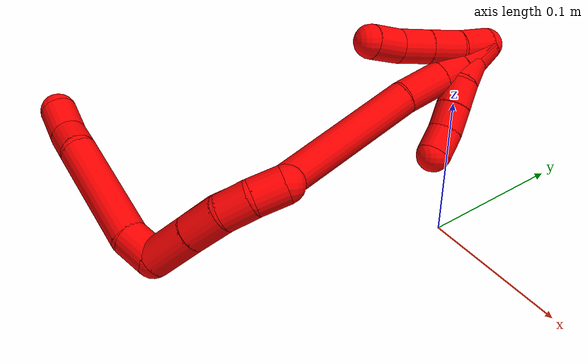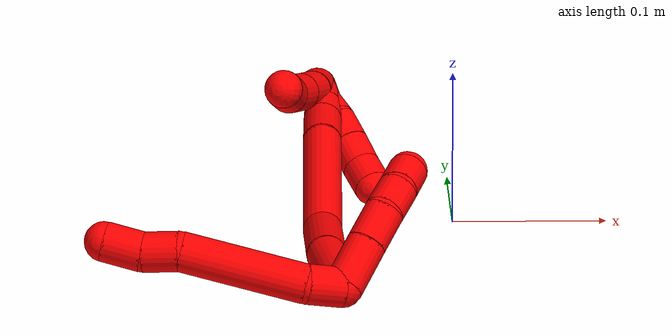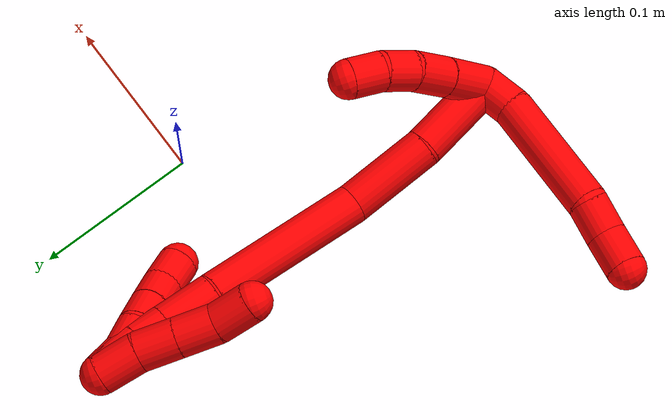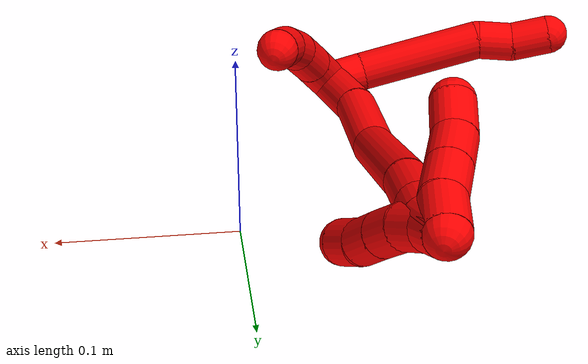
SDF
<sdf version="1.7">
 <world name="default">
  <model name="2">
   <static>0</static>
   <link name="2">
    <collision name="collision-cylinder-e_1_2_8">
     <pose>-0.008782 0.004555 0.00616 -0.636702 -0.853503 0.297485</pose>
     <geometry><cylinder><radius>0.0125</radius><length>0.023308</length></cylinder></geometry>
     <surface>
      <friction><ode><mu>1.16</mu><mu2>1.16</mu2><slip1>0</slip1><slip2>0</slip2></ode></friction>
      <contact><ode><kp>1e+06</kp><kd>1</kd><max_vel>0</max_vel><min_depth>0.001</min_depth></ode></contact>
     </surface>
    </collision>
    <visual name="visual-cylinder-e_1_2_8">
     <pose>-0.008782 0.004555 0.00616 -0.636702 -0.853503 0.297485</pose>
     <geometry><cylinder><radius>0.0125</radius><length>0.023308</length></cylinder></geometry>
     <material><ambient>1 0 0 1</ambient></material>
    </visual>
    <collision name="collision-cylinder-e_2_8_9">
     <pose>-0.048369 0.030845 0.024528 -1.05902 -0.890421 0.544649</pose>
     <geometry><cylinder><radius>0.0125</radius><length>0.079257</length></cylinder></geometry>
     <surface>
      <friction><ode><mu>1.16</mu><mu2>1.16</mu2><slip1>0</slip1><slip2>0</slip2></ode></friction>
      <contact><ode><kp>1e+06</kp><kd>1</kd><max_vel>0</max_vel><min_depth>0.001</min_depth></ode></contact>
     </surface>
    </collision>
    <visual name="visual-cylinder-e_2_8_9">
     <pose>-0.048369 0.030845 0.024528 -1.05902 -0.890421 0.544649</pose>
     <geometry><cylinder><radius>0.0125</radius><length>0.079257</length></cylinder></geometry>
     <material><ambient>1 0 0 1</ambient></material>
    </visual>
    <collision name="collision-cylinder-e_3_9_10">
     <pose>-0.089882 0.055957 0.038657 -1.05355 -1.22281 0.774261</pose>
     <geometry><cylinder><radius>0.0125</radius><length>0.022783</length></cylinder></geometry>
     <surface>
      <friction><ode><mu>1.16</mu><mu2>1.16</mu2><slip1>0</slip1><slip2>0</slip2></ode></friction>
      <contact><ode><kp>1e+06</kp><kd>1</kd><max_vel>0</max_vel><min_depth>0.001</min_depth></ode></contact>
     </surface>
    </collision>
    <visual name="visual-cylinder-e_3_9_10">
     <pose>-0.089882 0.055957 0.038657 -1.05355 -1.22281 0.774261</pose>
     <geometry><cylinder><radius>0.0125</radius><length>0.022783</length></cylinder></geometry>
     <material><ambient>1 0 0 1</ambient></material>
    </visual>
    <collision name="collision-cylinder-e_4_10_6">
     <pose>-0.11052 0.066214 0.043026 -1.22907 -0.936611 0.685726</pose>
     <geometry><cylinder><radius>0.0125</radius><length>0.024653</length></cylinder></geometry>
     <surface>
      <friction><ode><mu>1.16</mu><mu2>1.16</mu2><slip1>0</slip1><slip2>0</slip2></ode></friction>
      <contact><ode><kp>1e+06</kp><kd>1</kd><max_vel>0</max_vel><min_depth>0.001</min_depth></ode></contact>
     </surface>
    </collision>
    <visual name="visual-cylinder-e_4_10_6">
     <pose>-0.11052 0.066214 0.043026 -1.22907 -0.936611 0.685726</pose>
     <geometry><cylinder><radius>0.0125</radius><length>0.024653</length></cylinder></geometry>
     <material><ambient>1 0 0 1</ambient></material>
    </visual>
    <collision name="collision-cylinder-e_1_2_11">
     <pose>0.008349 0.010169 -0.00946 -2.3201 0.541243 -1.13437</pose>
     <geometry><cylinder><radius>0.0125</radius><length>0.03241</length></cylinder></geometry>
     <surface>
      <friction><ode><mu>1.16</mu><mu2>1.16</mu2><slip1>0</slip1><slip2>0</slip2></ode></friction>
      <contact><ode><kp>1e+06</kp><kd>1</kd><max_vel>0</max_vel><min_depth>0.001</min_depth></ode></contact>
     </surface>
    </collision>
    <visual name="visual-cylinder-e_1_2_11">
     <pose>0.008349 0.010169 -0.00946 -2.3201 0.541243 -1.13437</pose>
     <geometry><cylinder><radius>0.0125</radius><length>0.03241</length></cylinder></geometry>
     <material><ambient>1 0 0 1</ambient></material>
    </visual>
    <collision name="collision-cylinder-e_2_11_12">
     <pose>0.023035 0.02809 -0.02674 -2.3605 0.52224 -1.15145</pose>
     <geometry><cylinder><radius>0.0125</radius><length>0.025411</length></cylinder></geometry>
     <surface>
      <friction><ode><mu>1.16</mu><mu2>1.16</mu2><slip1>0</slip1><slip2>0</slip2></ode></friction>
      <contact><ode><kp>1e+06</kp><kd>1</kd><max_vel>0</max_vel><min_depth>0.001</min_depth></ode></contact>
     </surface>
    </collision>
    <visual name="visual-cylinder-e_2_11_12">
     <pose>0.023035 0.02809 -0.02674 -2.3605 0.52224 -1.15145</pose>
     <geometry><cylinder><radius>0.0125</radius><length>0.025411</length></cylinder></geometry>
     <material><ambient>1 0 0 1</ambient></material>
    </visual>
    <collision name="collision-cylinder-e_3_12_13">
     <pose>0.033273 0.041221 -0.042633 -2.55399 0.382257 -1.13793</pose>
     <geometry><cylinder><radius>0.0125</radius><length>0.020909</length></cylinder></geometry>
     <surface>
      <friction><ode><mu>1.16</mu><mu2>1.16</mu2><slip1>0</slip1><slip2>0</slip2></ode></friction>
      <contact><ode><kp>1e+06</kp><kd>1</kd><max_vel>0</max_vel><min_depth>0.001</min_depth></ode></contact>
     </surface>
    </collision>
    <visual name="visual-cylinder-e_3_12_13">
     <pose>0.033273 0.041221 -0.042633 -2.55399 0.382257 -1.13793</pose>
     <geometry><cylinder><radius>0.0125</radius><length>0.020909</length></cylinder></geometry>
     <material><ambient>1 0 0 1</ambient></material>
    </visual>
    <collision name="collision-cylinder-e_4_13_5">
     <pose>0.039003 0.050951 -0.060236 -2.71316 0.173012 -0.758643</pose>
     <geometry><cylinder><radius>0.0125</radius><length>0.02127</length></cylinder></geometry>
     <surface>
      <friction><ode><mu>1.16</mu><mu2>1.16</mu2><slip1>0</slip1><slip2>0</slip2></ode></friction>
      <contact><ode><kp>1e+06</kp><kd>1</kd><max_vel>0</max_vel><min_depth>0.001</min_depth></ode></contact>
     </surface>
    </collision>
    <visual name="visual-cylinder-e_4_13_5">
     <pose>0.039003 0.050951 -0.060236 -2.71316 0.173012 -0.758643</pose>
     <geometry><cylinder><radius>0.0125</radius><length>0.02127</length></cylinder></geometry>
     <material><ambient>1 0 0 1</ambient></material>
    </visual>
    <collision name="collision-cylinder-e_1_2_14">
     <pose>-0.00947 0.011233 -0.02277 -2.68328 -0.357016 1.31678</pose>
     <geometry><cylinder><radius>0.0125</radius><length>0.054197</length></cylinder></geometry>
     <surface>
      <friction><ode><mu>1.16</mu><mu2>1.16</mu2><slip1>0</slip1><slip2>0</slip2></ode></friction>
      <contact><ode><kp>1e+06</kp><kd>1</kd><max_vel>0</max_vel><min_depth>0.001</min_depth></ode></contact>
     </surface>
    </collision>
    <visual name="visual-cylinder-e_1_2_14">
     <pose>-0.00947 0.011233 -0.02277 -2.68328 -0.357016 1.31678</pose>
     <geometry><cylinder><radius>0.0125</radius><length>0.054197</length></cylinder></geometry>
     <material><ambient>1 0 0 1</ambient></material>
    </visual>
    <collision name="collision-cylinder-e_2_14_15">
     <pose>-0.026351 0.030301 -0.071216 -2.84546 -0.269328 1.47481</pose>
     <geometry><cylinder><radius>0.0125</radius><length>0.055698</length></cylinder></geometry>
     <surface>
      <friction><ode><mu>1.16</mu><mu2>1.16</mu2><slip1>0</slip1><slip2>0</slip2></ode></friction>
      <contact><ode><kp>1e+06</kp><kd>1</kd><max_vel>0</max_vel><min_depth>0.001</min_depth></ode></contact>
     </surface>
    </collision>
    <visual name="visual-cylinder-e_2_14_15">
     <pose>-0.026351 0.030301 -0.071216 -2.84546 -0.269328 1.47481</pose>
     <geometry><cylinder><radius>0.0125</radius><length>0.055698</length></cylinder></geometry>
     <material><ambient>1 0 0 1</ambient></material>
    </visual>
    <collision name="collision-cylinder-e_3_15_16">
     <pose>-0.039464 0.066185 -0.141917 -2.58444 -0.107087 0.37047</pose>
     <geometry><cylinder><radius>0.0125</radius><length>0.106706</length></cylinder></geometry>
     <surface>
      <friction><ode><mu>1.16</mu><mu2>1.16</mu2><slip1>0</slip1><slip2>0</slip2></ode></friction>
      <contact><ode><kp>1e+06</kp><kd>1</kd><max_vel>0</max_vel><min_depth>0.001</min_depth></ode></contact>
     </surface>
    </collision>
    <visual name="visual-cylinder-e_3_15_16">
     <pose>-0.039464 0.066185 -0.141917 -2.58444 -0.107087 0.37047</pose>
     <geometry><cylinder><radius>0.0125</radius><length>0.106706</length></cylinder></geometry>
     <material><ambient>1 0 0 1</ambient></material>
    </visual>
    <collision name="collision-cylinder-e_4_16_17">
     <pose>-0.047831 0.101135 -0.202348 -2.72053 -0.156578 0.703658</pose>
     <geometry><cylinder><radius>0.0125</radius><length>0.034179</length></cylinder></geometry>
     <surface>
      <friction><ode><mu>1.16</mu><mu2>1.16</mu2><slip1>0</slip1><slip2>0</slip2></ode></friction>
      <contact><ode><kp>1e+06</kp><kd>1</kd><max_vel>0</max_vel><min_depth>0.001</min_depth></ode></contact>
     </surface>
    </collision>
    <visual name="visual-cylinder-e_4_16_17">
     <pose>-0.047831 0.101135 -0.202348 -2.72053 -0.156578 0.703658</pose>
     <geometry><cylinder><radius>0.0125</radius><length>0.034179</length></cylinder></geometry>
     <material><ambient>1 0 0 1</ambient></material>
    </visual>
    <collision name="collision-cylinder-e_5_17_18">
     <pose>-0.051822 0.112199 -0.226903 -2.71441 -0.131175 0.588081</pose>
     <geometry><cylinder><radius>0.0125</radius><length>0.02028</length></cylinder></geometry>
     <surface>
      <friction><ode><mu>1.16</mu><mu2>1.16</mu2><slip1>0</slip1><slip2>0</slip2></ode></friction>
      <contact><ode><kp>1e+06</kp><kd>1</kd><max_vel>0</max_vel><min_depth>0.001</min_depth></ode></contact>
     </surface>
    </collision>
    <visual name="visual-cylinder-e_5_17_18">
     <pose>-0.051822 0.112199 -0.226903 -2.71441 -0.131175 0.588081</pose>
     <geometry><cylinder><radius>0.0125</radius><length>0.02028</length></cylinder></geometry>
     <material><ambient>1 0 0 1</ambient></material>
    </visual>
    <collision name="collision-cylinder-e_6_18_1">
     <pose>-0.056697 0.124137 -0.24773 -2.55432 -0.247745 0.781226</pose>
     <geometry><cylinder><radius>0.0125</radius><length>0.02894</length></cylinder></geometry>
     <surface>
      <friction><ode><mu>1.16</mu><mu2>1.16</mu2><slip1>0</slip1><slip2>0</slip2></ode></friction>
      <contact><ode><kp>1e+06</kp><kd>1</kd><max_vel>0</max_vel><min_depth>0.001</min_depth></ode></contact>
     </surface>
    </collision>
    <visual name="visual-cylinder-e_6_18_1">
     <pose>-0.056697 0.124137 -0.24773 -2.55432 -0.247745 0.781226</pose>
     <geometry><cylinder><radius>0.0125</radius><length>0.02894</length></cylinder></geometry>
     <material><ambient>1 0 0 1</ambient></material>
    </visual>
    <collision name="collision-cylinder-e_1_1_19">
     <pose>-0.058004 0.130894 -0.246813 0.080461 0.175543 0.007084</pose>
     <geometry><cylinder><radius>0.0125</radius><length>0.025666</length></cylinder></geometry>
     <surface>
      <friction><ode><mu>1.16</mu><mu2>1.16</mu2><slip1>0</slip1><slip2>0</slip2></ode></friction>
      <contact><ode><kp>1e+06</kp><kd>1</kd><max_vel>0</max_vel><min_depth>0.001</min_depth></ode></contact>
     </surface>
    </collision>
    <visual name="visual-cylinder-e_1_1_19">
     <pose>-0.058004 0.130894 -0.246813 0.080461 0.175543 0.007084</pose>
     <geometry><cylinder><radius>0.0125</radius><length>0.025666</length></cylinder></geometry>
     <material><ambient>1 0 0 1</ambient></material>
    </visual>
    <collision name="collision-cylinder-e_2_19_20">
     <pose>-0.05574 0.129865 -0.221694 0.001077 0.001803 1e-06</pose>
     <geometry><cylinder><radius>0.0125</radius><length>0.025049</length></cylinder></geometry>
     <surface>
      <friction><ode><mu>1.16</mu><mu2>1.16</mu2><slip1>0</slip1><slip2>0</slip2></ode></friction>
      <contact><ode><kp>1e+06</kp><kd>1</kd><max_vel>0</max_vel><min_depth>0.001</min_depth></ode></contact>
     </surface>
    </collision>
    <visual name="visual-cylinder-e_2_19_20">
     <pose>-0.05574 0.129865 -0.221694 0.001077 0.001803 1e-06</pose>
     <geometry><cylinder><radius>0.0125</radius><length>0.025049</length></cylinder></geometry>
     <material><ambient>1 0 0 1</ambient></material>
    </visual>
    <collision name="collision-cylinder-e_3_20_21">
     <pose>-0.055642 0.129927 -0.196768 -0.006099 0.006106 -1.9e-05</pose>
     <geometry><cylinder><radius>0.0125</radius><length>0.024805</length></cylinder></geometry>
     <surface>
      <friction><ode><mu>1.16</mu><mu2>1.16</mu2><slip1>0</slip1><slip2>0</slip2></ode></friction>
      <contact><ode><kp>1e+06</kp><kd>1</kd><max_vel>0</max_vel><min_depth>0.001</min_depth></ode></contact>
     </surface>
    </collision>
    <visual name="visual-cylinder-e_3_20_21">
     <pose>-0.055642 0.129927 -0.196768 -0.006099 0.006106 -1.9e-05</pose>
     <geometry><cylinder><radius>0.0125</radius><length>0.024805</length></cylinder></geometry>
     <material><ambient>1 0 0 1</ambient></material>
    </visual>
    <collision name="collision-cylinder-e_4_21_4">
     <pose>-0.052781 0.131658 -0.172562 -0.139324 0.229588 -0.01609</pose>
     <geometry><cylinder><radius>0.0125</radius><length>0.024481</length></cylinder></geometry>
     <surface>
      <friction><ode><mu>1.16</mu><mu2>1.16</mu2><slip1>0</slip1><slip2>0</slip2></ode></friction>
      <contact><ode><kp>1e+06</kp><kd>1</kd><max_vel>0</max_vel><min_depth>0.001</min_depth></ode></contact>
     </surface>
    </collision>
    <visual name="visual-cylinder-e_4_21_4">
     <pose>-0.052781 0.131658 -0.172562 -0.139324 0.229588 -0.01609</pose>
     <geometry><cylinder><radius>0.0125</radius><length>0.024481</length></cylinder></geometry>
     <material><ambient>1 0 0 1</ambient></material>
    </visual>
    <collision name="collision-cylinder-e_1_1_22">
     <pose>-0.057733 0.125688 -0.251994 0.698186 0.253931 0.092864</pose>
     <geometry><cylinder><radius>0.0125</radius><length>0.02</length></cylinder></geometry>
     <surface>
      <friction><ode><mu>1.16</mu><mu2>1.16</mu2><slip1>0</slip1><slip2>0</slip2></ode></friction>
      <contact><ode><kp>1e+06</kp><kd>1</kd><max_vel>0</max_vel><min_depth>0.001</min_depth></ode></contact>
     </surface>
    </collision>
    <visual name="visual-cylinder-e_1_1_22">
     <pose>-0.057733 0.125688 -0.251994 0.698186 0.253931 0.092864</pose>
     <geometry><cylinder><radius>0.0125</radius><length>0.02</length></cylinder></geometry>
     <material><ambient>1 0 0 1</ambient></material>
    </visual>
    <collision name="collision-cylinder-e_2_22_23">
     <pose>-0.050917 0.112231 -0.239182 0.929833 0.444934 0.225963</pose>
     <geometry><cylinder><radius>0.0125</radius><length>0.02</length></cylinder></geometry>
     <surface>
      <friction><ode><mu>1.16</mu><mu2>1.16</mu2><slip1>0</slip1><slip2>0</slip2></ode></friction>
      <contact><ode><kp>1e+06</kp><kd>1</kd><max_vel>0</max_vel><min_depth>0.001</min_depth></ode></contact>
     </surface>
    </collision>
    <visual name="visual-cylinder-e_2_22_23">
     <pose>-0.050917 0.112231 -0.239182 0.929833 0.444934 0.225963</pose>
     <geometry><cylinder><radius>0.0125</radius><length>0.02</length></cylinder></geometry>
     <material><ambient>1 0 0 1</ambient></material>
    </visual>
    <collision name="collision-cylinder-e_3_23_24">
     <pose>-0.043625 0.096425 -0.229587 1.11546 0.303443 0.190175</pose>
     <geometry><cylinder><radius>0.0125</radius><length>0.02</length></cylinder></geometry>
     <surface>
      <friction><ode><mu>1.16</mu><mu2>1.16</mu2><slip1>0</slip1><slip2>0</slip2></ode></friction>
      <contact><ode><kp>1e+06</kp><kd>1</kd><max_vel>0</max_vel><min_depth>0.001</min_depth></ode></contact>
     </surface>
    </collision>
    <visual name="visual-cylinder-e_3_23_24">
     <pose>-0.043625 0.096425 -0.229587 1.11546 0.303443 0.190175</pose>
     <geometry><cylinder><radius>0.0125</radius><length>0.02</length></cylinder></geometry>
     <material><ambient>1 0 0 1</ambient></material>
    </visual>
    <collision name="collision-cylinder-e_4_24_25">
     <pose>-0.037913 0.079167 -0.221255 1.12653 0.275897 0.174897</pose>
     <geometry><cylinder><radius>0.0125</radius><length>0.02</length></cylinder></geometry>
     <surface>
      <friction><ode><mu>1.16</mu><mu2>1.16</mu2><slip1>0</slip1><slip2>0</slip2></ode></friction>
      <contact><ode><kp>1e+06</kp><kd>1</kd><max_vel>0</max_vel><min_depth>0.001</min_depth></ode></contact>
     </surface>
    </collision>
    <visual name="visual-cylinder-e_4_24_25">
     <pose>-0.037913 0.079167 -0.221255 1.12653 0.275897 0.174897</pose>
     <geometry><cylinder><radius>0.0125</radius><length>0.02</length></cylinder></geometry>
     <material><ambient>1 0 0 1</ambient></material>
    </visual>
    <collision name="collision-cylinder-e_5_25_3">
     <pose>-0.031732 0.062978 -0.211482 0.926266 0.352914 0.177614</pose>
     <geometry><cylinder><radius>0.0125</radius><length>0.02</length></cylinder></geometry>
     <surface>
      <friction><ode><mu>1.16</mu><mu2>1.16</mu2><slip1>0</slip1><slip2>0</slip2></ode></friction>
      <contact><ode><kp>1e+06</kp><kd>1</kd><max_vel>0</max_vel><min_depth>0.001</min_depth></ode></contact>
     </surface>
    </collision>
    <visual name="visual-cylinder-e_5_25_3">
     <pose>-0.031732 0.062978 -0.211482 0.926266 0.352914 0.177614</pose>
     <geometry><cylinder><radius>0.0125</radius><length>0.02</length></cylinder></geometry>
     <material><ambient>1 0 0 1</ambient></material>
    </visual>
    <collision name="collision-sphere-3">
     <pose>-0.028276 0.055476 -0.205844 0 -0 0</pose>
     <geometry><sphere><radius>0.0125</radius></sphere></geometry>
     <surface>
      <friction><ode><mu>1.16</mu><mu2>1.16</mu2><slip1>0</slip1><slip2>0</slip2></ode></friction>
      <contact><ode><kp>1e+06</kp><kd>1</kd><max_vel>0</max_vel><min_depth>0.001</min_depth></ode></contact>
     </surface>
    </collision>
    <visual name="visual-sphere-3">
     <pose>-0.028276 0.055476 -0.205844 0 -0 0</pose>
     <geometry><sphere><radius>0.0125</radius></sphere></geometry>
     <material><ambient>1 0 0 1</ambient></material>
    </visual>
    <collision name="collision-sphere-25">
     <pose>-0.035189 0.070479 -0.21712 0 -0 0</pose>
     <geometry><sphere><radius>0.0125</radius></sphere></geometry>
     <surface>
      <friction><ode><mu>1.16</mu><mu2>1.16</mu2><slip1>0</slip1><slip2>0</slip2></ode></friction>
      <contact><ode><kp>1e+06</kp><kd>1</kd><max_vel>0</max_vel><min_depth>0.001</min_depth></ode></contact>
     </surface>
    </collision>
    <visual name="visual-sphere-25">
     <pose>-0.035189 0.070479 -0.21712 0 -0 0</pose>
     <geometry><sphere><radius>0.0125</radius></sphere></geometry>
     <material><ambient>1 0 0 1</ambient></material>
    </visual>
    <collision name="collision-sphere-24">
     <pose>-0.040637 0.087854 -0.225391 0 -0 0</pose>
     <geometry><sphere><radius>0.0125</radius></sphere></geometry>
     <surface>
      <friction><ode><mu>1.16</mu><mu2>1.16</mu2><slip1>0</slip1><slip2>0</slip2></ode></friction>
      <contact><ode><kp>1e+06</kp><kd>1</kd><max_vel>0</max_vel><min_depth>0.001</min_depth></ode></contact>
     </surface>
    </collision>
    <visual name="visual-sphere-24">
     <pose>-0.040637 0.087854 -0.225391 0 -0 0</pose>
     <geometry><sphere><radius>0.0125</radius></sphere></geometry>
     <material><ambient>1 0 0 1</ambient></material>
    </visual>
    <collision name="collision-sphere-23">
     <pose>-0.046613 0.104996 -0.233784 0 -0 0</pose>
     <geometry><sphere><radius>0.0125</radius></sphere></geometry>
     <surface>
      <friction><ode><mu>1.16</mu><mu2>1.16</mu2><slip1>0</slip1><slip2>0</slip2></ode></friction>
      <contact><ode><kp>1e+06</kp><kd>1</kd><max_vel>0</max_vel><min_depth>0.001</min_depth></ode></contact>
     </surface>
    </collision>
    <visual name="visual-sphere-23">
     <pose>-0.046613 0.104996 -0.233784 0 -0 0</pose>
     <geometry><sphere><radius>0.0125</radius></sphere></geometry>
     <material><ambient>1 0 0 1</ambient></material>
    </visual>
    <collision name="collision-sphere-22">
     <pose>-0.055221 0.119466 -0.244579 0 -0 0</pose>
     <geometry><sphere><radius>0.0125</radius></sphere></geometry>
     <surface>
      <friction><ode><mu>1.16</mu><mu2>1.16</mu2><slip1>0</slip1><slip2>0</slip2></ode></friction>
      <contact><ode><kp>1e+06</kp><kd>1</kd><max_vel>0</max_vel><min_depth>0.001</min_depth></ode></contact>
     </surface>
    </collision>
    <visual name="visual-sphere-22">
     <pose>-0.055221 0.119466 -0.244579 0 -0 0</pose>
     <geometry><sphere><radius>0.0125</radius></sphere></geometry>
     <material><ambient>1 0 0 1</ambient></material>
    </visual>
    <collision name="collision-sphere-4">
     <pose>-0.049995 0.133314 -0.160759 0 -0 0</pose>
     <geometry><sphere><radius>0.0125</radius></sphere></geometry>
     <surface>
      <friction><ode><mu>1.16</mu><mu2>1.16</mu2><slip1>0</slip1><slip2>0</slip2></ode></friction>
      <contact><ode><kp>1e+06</kp><kd>1</kd><max_vel>0</max_vel><min_depth>0.001</min_depth></ode></contact>
     </surface>
    </collision>
    <visual name="visual-sphere-4">
     <pose>-0.049995 0.133314 -0.160759 0 -0 0</pose>
     <geometry><sphere><radius>0.0125</radius></sphere></geometry>
     <material><ambient>1 0 0 1</ambient></material>
    </visual>
    <collision name="collision-sphere-21">
     <pose>-0.055566 0.130003 -0.184366 0 -0 0</pose>
     <geometry><sphere><radius>0.0125</radius></sphere></geometry>
     <surface>
      <friction><ode><mu>1.16</mu><mu2>1.16</mu2><slip1>0</slip1><slip2>0</slip2></ode></friction>
      <contact><ode><kp>1e+06</kp><kd>1</kd><max_vel>0</max_vel><min_depth>0.001</min_depth></ode></contact>
     </surface>
    </collision>
    <visual name="visual-sphere-21">
     <pose>-0.055566 0.130003 -0.184366 0 -0 0</pose>
     <geometry><sphere><radius>0.0125</radius></sphere></geometry>
     <material><ambient>1 0 0 1</ambient></material>
    </visual>
    <collision name="collision-sphere-20">
     <pose>-0.055718 0.129852 -0.20917 0 -0 0</pose>
     <geometry><sphere><radius>0.0125</radius></sphere></geometry>
     <surface>
      <friction><ode><mu>1.16</mu><mu2>1.16</mu2><slip1>0</slip1><slip2>0</slip2></ode></friction>
      <contact><ode><kp>1e+06</kp><kd>1</kd><max_vel>0</max_vel><min_depth>0.001</min_depth></ode></contact>
     </surface>
    </collision>
    <visual name="visual-sphere-20">
     <pose>-0.055718 0.129852 -0.20917 0 -0 0</pose>
     <geometry><sphere><radius>0.0125</radius></sphere></geometry>
     <material><ambient>1 0 0 1</ambient></material>
    </visual>
    <collision name="collision-sphere-11">
     <pose>0.016698 0.020338 -0.01892 0 -0 0</pose>
     <geometry><sphere><radius>0.0125</radius></sphere></geometry>
     <surface>
      <friction><ode><mu>1.16</mu><mu2>1.16</mu2><slip1>0</slip1><slip2>0</slip2></ode></friction>
      <contact><ode><kp>1e+06</kp><kd>1</kd><max_vel>0</max_vel><min_depth>0.001</min_depth></ode></contact>
     </surface>
    </collision>
    <visual name="visual-sphere-11">
     <pose>0.016698 0.020338 -0.01892 0 -0 0</pose>
     <geometry><sphere><radius>0.0125</radius></sphere></geometry>
     <material><ambient>1 0 0 1</ambient></material>
    </visual>
    <collision name="collision-sphere-6">
     <pose>-0.12045 0.073096 0.045474 0 -0 0</pose>
     <geometry><sphere><radius>0.0125</radius></sphere></geometry>
     <surface>
      <friction><ode><mu>1.16</mu><mu2>1.16</mu2><slip1>0</slip1><slip2>0</slip2></ode></friction>
      <contact><ode><kp>1e+06</kp><kd>1</kd><max_vel>0</max_vel><min_depth>0.001</min_depth></ode></contact>
     </surface>
    </collision>
    <visual name="visual-sphere-6">
     <pose>-0.12045 0.073096 0.045474 0 -0 0</pose>
     <geometry><sphere><radius>0.0125</radius></sphere></geometry>
     <material><ambient>1 0 0 1</ambient></material>
    </visual>
    <collision name="collision-sphere-10">
     <pose>-0.100591 0.059333 0.040578 0 -0 0</pose>
     <geometry><sphere><radius>0.0125</radius></sphere></geometry>
     <surface>
      <friction><ode><mu>1.16</mu><mu2>1.16</mu2><slip1>0</slip1><slip2>0</slip2></ode></friction>
      <contact><ode><kp>1e+06</kp><kd>1</kd><max_vel>0</max_vel><min_depth>0.001</min_depth></ode></contact>
     </surface>
    </collision>
    <visual name="visual-sphere-10">
     <pose>-0.100591 0.059333 0.040578 0 -0 0</pose>
     <geometry><sphere><radius>0.0125</radius></sphere></geometry>
     <material><ambient>1 0 0 1</ambient></material>
    </visual>
    <collision name="collision-sphere-9">
     <pose>-0.079173 0.05258 0.036737 0 -0 0</pose>
     <geometry><sphere><radius>0.0125</radius></sphere></geometry>
     <surface>
      <friction><ode><mu>1.16</mu><mu2>1.16</mu2><slip1>0</slip1><slip2>0</slip2></ode></friction>
      <contact><ode><kp>1e+06</kp><kd>1</kd><max_vel>0</max_vel><min_depth>0.001</min_depth></ode></contact>
     </surface>
    </collision>
    <visual name="visual-sphere-9">
     <pose>-0.079173 0.05258 0.036737 0 -0 0</pose>
     <geometry><sphere><radius>0.0125</radius></sphere></geometry>
     <material><ambient>1 0 0 1</ambient></material>
    </visual>
    <collision name="collision-sphere-2">
     <geometry><sphere><radius>0.0125</radius></sphere></geometry>
     <surface>
      <friction><ode><mu>1.16</mu><mu2>1.16</mu2><slip1>0</slip1><slip2>0</slip2></ode></friction>
      <contact><ode><kp>1e+06</kp><kd>1</kd><max_vel>0</max_vel><min_depth>0.001</min_depth></ode></contact>
     </surface>
    </collision>
    <visual name="visual-sphere-2">
     <geometry><sphere><radius>0.0125</radius></sphere></geometry>
     <material><ambient>1 0 0 1</ambient></material>
    </visual>
    <collision name="collision-sphere-19">
     <pose>-0.055763 0.129879 -0.234218 0 -0 0</pose>
     <geometry><sphere><radius>0.0125</radius></sphere></geometry>
     <surface>
      <friction><ode><mu>1.16</mu><mu2>1.16</mu2><slip1>0</slip1><slip2>0</slip2></ode></friction>
      <contact><ode><kp>1e+06</kp><kd>1</kd><max_vel>0</max_vel><min_depth>0.001</min_depth></ode></contact>
     </surface>
    </collision>
    <visual name="visual-sphere-19">
     <pose>-0.055763 0.129879 -0.234218 0 -0 0</pose>
     <geometry><sphere><radius>0.0125</radius></sphere></geometry>
     <material><ambient>1 0 0 1</ambient></material>
    </visual>
    <collision name="collision-sphere-8">
     <pose>-0.017564 0.009109 0.012319 0 -0 0</pose>
     <geometry><sphere><radius>0.0125</radius></sphere></geometry>
     <surface>
      <friction><ode><mu>1.16</mu><mu2>1.16</mu2><slip1>0</slip1><slip2>0</slip2></ode></friction>
      <contact><ode><kp>1e+06</kp><kd>1</kd><max_vel>0</max_vel><min_depth>0.001</min_depth></ode></contact>
     </surface>
    </collision>
    <visual name="visual-sphere-8">
     <pose>-0.017564 0.009109 0.012319 0 -0 0</pose>
     <geometry><sphere><radius>0.0125</radius></sphere></geometry>
     <material><ambient>1 0 0 1</ambient></material>
    </visual>
    <collision name="collision-sphere-12">
     <pose>0.029373 0.035843 -0.03456 0 -0 0</pose>
     <geometry><sphere><radius>0.0125</radius></sphere></geometry>
     <surface>
      <friction><ode><mu>1.16</mu><mu2>1.16</mu2><slip1>0</slip1><slip2>0</slip2></ode></friction>
      <contact><ode><kp>1e+06</kp><kd>1</kd><max_vel>0</max_vel><min_depth>0.001</min_depth></ode></contact>
     </surface>
    </collision>
    <visual name="visual-sphere-12">
     <pose>0.029373 0.035843 -0.03456 0 -0 0</pose>
     <geometry><sphere><radius>0.0125</radius></sphere></geometry>
     <material><ambient>1 0 0 1</ambient></material>
    </visual>
    <collision name="collision-sphere-13">
     <pose>0.037172 0.046598 -0.050706 0 -0 0</pose>
     <geometry><sphere><radius>0.0125</radius></sphere></geometry>
     <surface>
      <friction><ode><mu>1.16</mu><mu2>1.16</mu2><slip1>0</slip1><slip2>0</slip2></ode></friction>
      <contact><ode><kp>1e+06</kp><kd>1</kd><max_vel>0</max_vel><min_depth>0.001</min_depth></ode></contact>
     </surface>
    </collision>
    <visual name="visual-sphere-13">
     <pose>0.037172 0.046598 -0.050706 0 -0 0</pose>
     <geometry><sphere><radius>0.0125</radius></sphere></geometry>
     <material><ambient>1 0 0 1</ambient></material>
    </visual>
    <collision name="collision-sphere-5">
     <pose>0.040834 0.055303 -0.069765 0 -0 0</pose>
     <geometry><sphere><radius>0.0125</radius></sphere></geometry>
     <surface>
      <friction><ode><mu>1.16</mu><mu2>1.16</mu2><slip1>0</slip1><slip2>0</slip2></ode></friction>
      <contact><ode><kp>1e+06</kp><kd>1</kd><max_vel>0</max_vel><min_depth>0.001</min_depth></ode></contact>
     </surface>
    </collision>
    <visual name="visual-sphere-5">
     <pose>0.040834 0.055303 -0.069765 0 -0 0</pose>
     <geometry><sphere><radius>0.0125</radius></sphere></geometry>
     <material><ambient>1 0 0 1</ambient></material>
    </visual>
    <collision name="collision-sphere-14">
     <pose>-0.018941 0.022467 -0.045539 0 -0 0</pose>
     <geometry><sphere><radius>0.0125</radius></sphere></geometry>
     <surface>
      <friction><ode><mu>1.16</mu><mu2>1.16</mu2><slip1>0</slip1><slip2>0</slip2></ode></friction>
      <contact><ode><kp>1e+06</kp><kd>1</kd><max_vel>0</max_vel><min_depth>0.001</min_depth></ode></contact>
     </surface>
    </collision>
    <visual name="visual-sphere-14">
     <pose>-0.018941 0.022467 -0.045539 0 -0 0</pose>
     <geometry><sphere><radius>0.0125</radius></sphere></geometry>
     <material><ambient>1 0 0 1</ambient></material>
    </visual>
    <collision name="collision-sphere-15">
     <pose>-0.033761 0.038135 -0.096893 0 -0 0</pose>
     <geometry><sphere><radius>0.0125</radius></sphere></geometry>
     <surface>
      <friction><ode><mu>1.16</mu><mu2>1.16</mu2><slip1>0</slip1><slip2>0</slip2></ode></friction>
      <contact><ode><kp>1e+06</kp><kd>1</kd><max_vel>0</max_vel><min_depth>0.001</min_depth></ode></contact>
     </surface>
    </collision>
    <visual name="visual-sphere-15">
     <pose>-0.033761 0.038135 -0.096893 0 -0 0</pose>
     <geometry><sphere><radius>0.0125</radius></sphere></geometry>
     <material><ambient>1 0 0 1</ambient></material>
    </visual>
    <collision name="collision-sphere-16">
     <pose>-0.045166 0.094235 -0.186942 0 -0 0</pose>
     <geometry><sphere><radius>0.0125</radius></sphere></geometry>
     <surface>
      <friction><ode><mu>1.16</mu><mu2>1.16</mu2><slip1>0</slip1><slip2>0</slip2></ode></friction>
      <contact><ode><kp>1e+06</kp><kd>1</kd><max_vel>0</max_vel><min_depth>0.001</min_depth></ode></contact>
     </surface>
    </collision>
    <visual name="visual-sphere-16">
     <pose>-0.045166 0.094235 -0.186942 0 -0 0</pose>
     <geometry><sphere><radius>0.0125</radius></sphere></geometry>
     <material><ambient>1 0 0 1</ambient></material>
    </visual>
    <collision name="collision-sphere-17">
     <pose>-0.050496 0.108034 -0.217754 0 -0 0</pose>
     <geometry><sphere><radius>0.0125</radius></sphere></geometry>
     <surface>
      <friction><ode><mu>1.16</mu><mu2>1.16</mu2><slip1>0</slip1><slip2>0</slip2></ode></friction>
      <contact><ode><kp>1e+06</kp><kd>1</kd><max_vel>0</max_vel><min_depth>0.001</min_depth></ode></contact>
     </surface>
    </collision>
    <visual name="visual-sphere-17">
     <pose>-0.050496 0.108034 -0.217754 0 -0 0</pose>
     <geometry><sphere><radius>0.0125</radius></sphere></geometry>
     <material><ambient>1 0 0 1</ambient></material>
    </visual>
    <collision name="collision-sphere-18">
     <pose>-0.053149 0.116364 -0.236052 0 -0 0</pose>
     <geometry><sphere><radius>0.0125</radius></sphere></geometry>
     <surface>
      <friction><ode><mu>1.16</mu><mu2>1.16</mu2><slip1>0</slip1><slip2>0</slip2></ode></friction>
      <contact><ode><kp>1e+06</kp><kd>1</kd><max_vel>0</max_vel><min_depth>0.001</min_depth></ode></contact>
     </surface>
    </collision>
    <visual name="visual-sphere-18">
     <pose>-0.053149 0.116364 -0.236052 0 -0 0</pose>
     <geometry><sphere><radius>0.0125</radius></sphere></geometry>
     <material><ambient>1 0 0 1</ambient></material>
    </visual>
    <collision name="collision-sphere-1">
     <pose>-0.060245 0.13191 -0.259408 0 -0 0</pose>
     <geometry><sphere><radius>0.0125</radius></sphere></geometry>
     <surface>
      <friction><ode><mu>1.16</mu><mu2>1.16</mu2><slip1>0</slip1><slip2>0</slip2></ode></friction>
      <contact><ode><kp>1e+06</kp><kd>1</kd><max_vel>0</max_vel><min_depth>0.001</min_depth></ode></contact>
     </surface>
    </collision>
    <visual name="visual-sphere-1">
     <pose>-0.060245 0.13191 -0.259408 0 -0 0</pose>
     <geometry><sphere><radius>0.0125</radius></sphere></geometry>
     <material><ambient>1 0 0 1</ambient></material>
    </visual>
    <inertial>
     <pose>-0.035925 0.066291 -0.109632 0 -0 0</pose>
     <mass>0.75</mass>
     <inertia>
      <ixx>0.000232</ixx>
      <ixy>0</ixy>
      <ixz>0</ixz>
      <iyy>6.2e-05</iyy>
      <iyz>0</iyz>
      <izz>-5.3e-05</izz>
     </inertia>
    </inertial>
   </link>
   <pose>-0.07295 -0.1736 0.012423 1.36157 -0.396646 -0.246259</pose>
  </model>
 </world>
</sdf>
